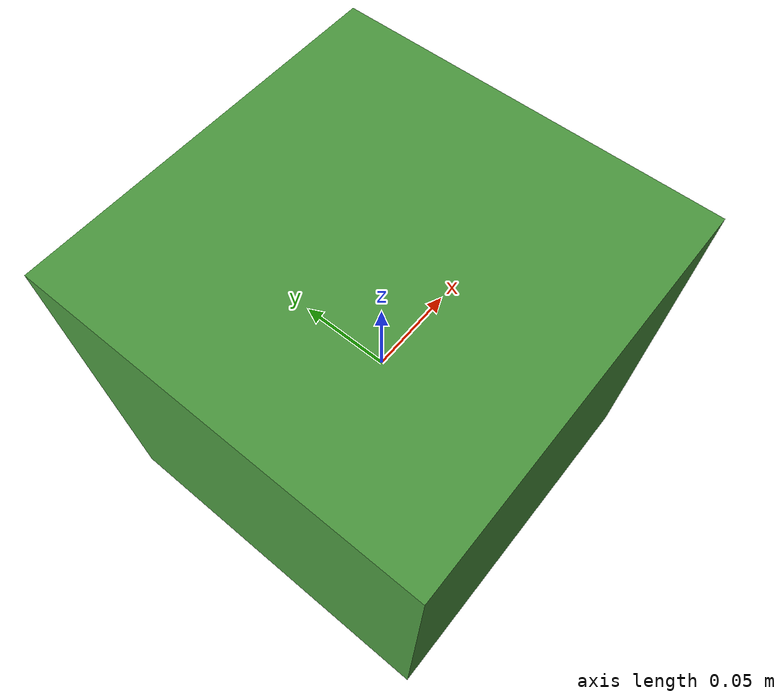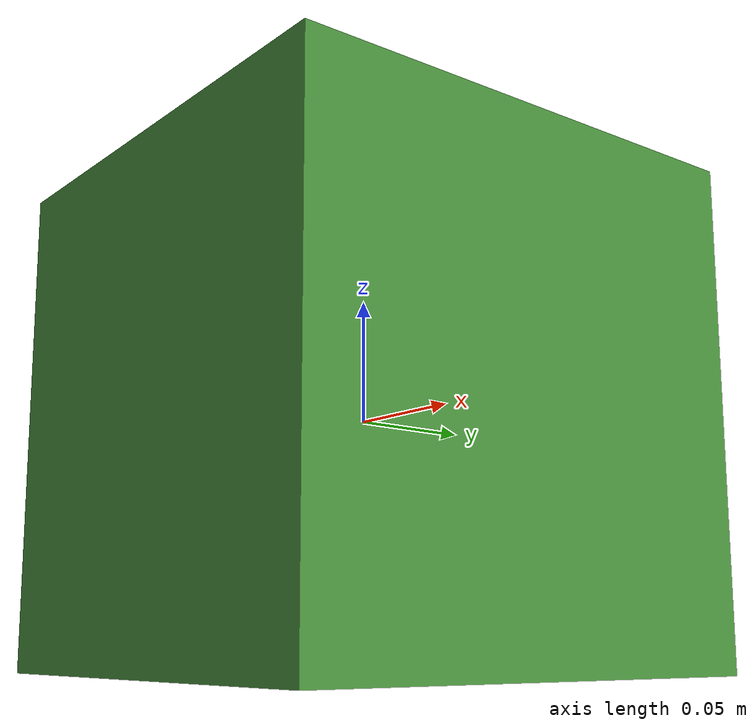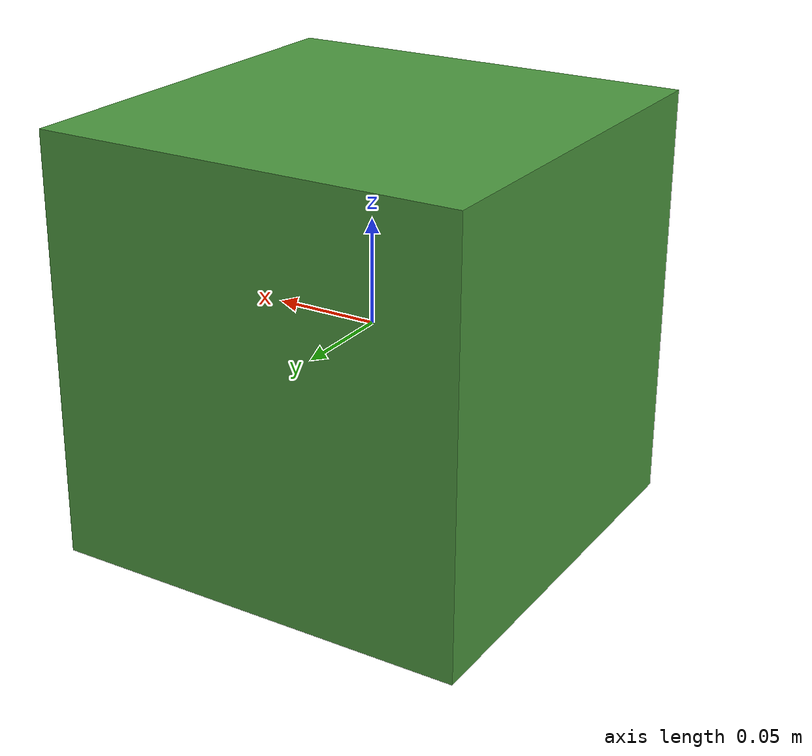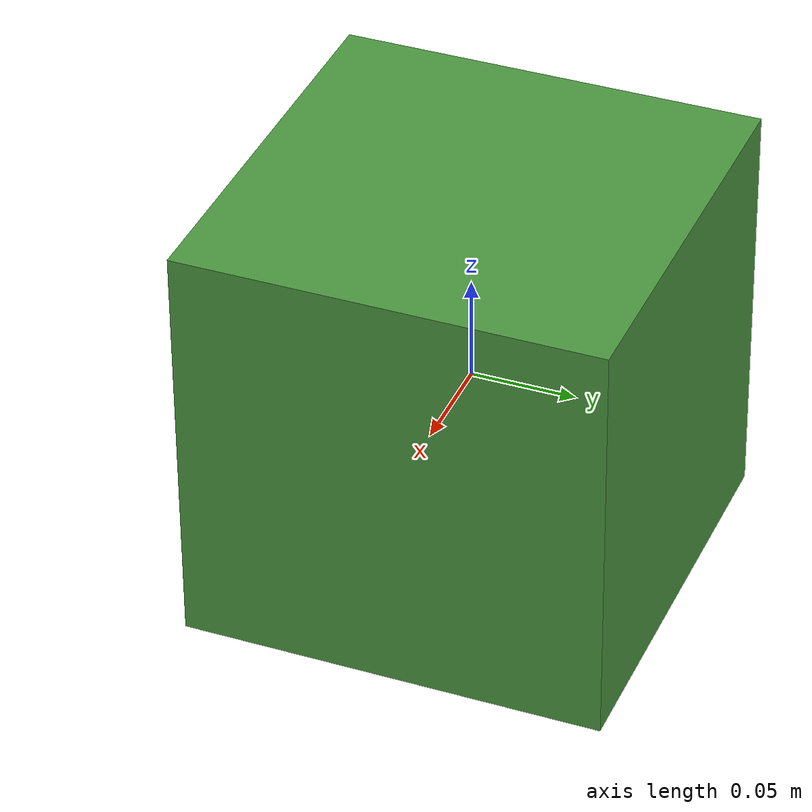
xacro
<?xml version="1.0"?>
<robot name="slider_joint"
       xmlns:xi="http://www.w3.org/2001/XInclude"
       xmlns:gazebo="http://playerstage.sourceforge.net/gazebo/xmlschema/#gz"
       xmlns:model="http://playerstage.sourceforge.net/gazebo/xmlschema/#model"
       xmlns:sensor="http://playerstage.sourceforge.net/gazebo/xmlschema/#sensor"
       xmlns:body="http://playerstage.sourceforge.net/gazebo/xmlschema/#body"
       xmlns:geom="http://playerstage.sourceforge.net/gazebo/xmlschema/#geom"
       xmlns:joint="http://playerstage.sourceforge.net/gazebo/xmlschema/#joint"
       xmlns:interface="http://playerstage.sourceforge.net/gazebo/xmlschema/#interface"
       xmlns:rendering="http://playerstage.sourceforge.net/gazebo/xmlschema/#rendering"
       xmlns:renderable="http://playerstage.sourceforge.net/gazebo/xmlschema/#renderable"
       xmlns:controller="http://playerstage.sourceforge.net/gazebo/xmlschema/#controller"
       xmlns:physics="http://playerstage.sourceforge.net/gazebo/xmlschema/#physics">

  <!-- a single slider link -->
  <link name="link">
    <inertial >
      <mass value="0.1" />
      <origin xyz="0 0 0" />
      <inertia  ixx="0.1" ixy="0.0"  ixz="0.0"  iyy="0.1"  iyz="0.0"  izz="0.1" />
    </inertial>
    <visual >
      <origin xyz="0 0 0" rpy="0 0 0" />
      <geometry>
        <box size="0.2 0.2 0.2" />
      </geometry>
    </visual>
    <collision >
      <origin xyz="0 0 0" rpy="0 0 0" />
      <geometry>
        <box size="0.2 0.2 0.2" />
      </geometry>
    </collision>
  </link>
  <gazebo reference="link">
    <material>Gazebo/GrassFloor</material>
    <turnGravityOff>false</turnGravityOff>
    <maxVel>1.0</maxVel>
    <minDepth>0.000</minDepth>
    <sensor:contact name="link_contact_sensor">
      <geom>link_geom</geom>
      <updateRate>1000.0</updateRate>
      <controller:gazebo_ros_bumper name="link_gazebo_ros_bumper_controller" plugin="libgazebo_ros_bumper.so">
        <alwaysOn>true</alwaysOn>
        <updateRate>1000.0</updateRate>
        <bumperTopicName>link_bumper</bumperTopicName>
      </controller:gazebo_ros_bumper>
    </sensor:contact>
  </gazebo>

  <gazebo>
      <!-- PR2_ACTARRAY -->
      <controller:gazebo_ros_controller_manager name="gazebo_ros_controller_manager" plugin="libgazebo_ros_controller_manager.so">
        <alwaysOn>true</alwaysOn>
        <updateRate>1000.0</updateRate>
        <interface:audio name="gazebo_ros_controller_manager_dummy_iface" />
      </controller:gazebo_ros_controller_manager>

      <!-- gazebo_ros_p3d for position groundtruth -->
      <controller:gazebo_ros_p3d name="p3d_link_controller" plugin="libgazebo_ros_p3d.so">
          <alwaysOn>true</alwaysOn>
          <updateRate>100.0</updateRate>
          <bodyName>link</bodyName>
          <topicName>link_pose</topicName>
          <frameName>map</frameName>
          <interface:position name="p3d_link_position"/>
      </controller:gazebo_ros_p3d>
  </gazebo>

</robot>
